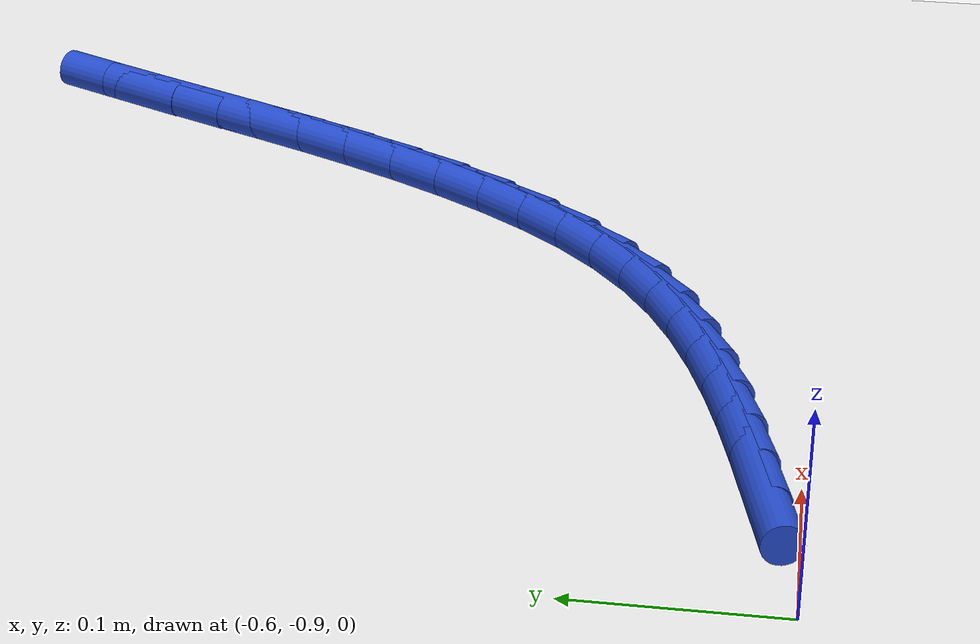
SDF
<sdf version="1.6">
 <world name="default">
  <model name="ground_plane">
   <static>1</static>
   <link name="link">
    <collision name="collision">
     <geometry><plane><normal>0 0 1</normal><size>100 100</size></plane></geometry>
     <surface><friction><ode><mu>100</mu><mu2>50</mu2></ode></friction></surface>
    </collision>
    <visual name="visual">
     <cast_shadows>0</cast_shadows>
     <geometry><plane><normal>0 0 1</normal><size>100 100</size></plane></geometry>
     <material>
      <script><uri>file://media/materials/scripts/gazebo.material</uri><name>Gazebo/WhiteGlow</name></script>
     </material>
    </visual>
   </link>
  </model>
  <model name="line">
   <link name="link_193">
    <pose>-0.522196267869529 -0.8838480058105354 0.01 0 1.57 0.22092395391204533</pose>
    <collision name="collision">
     <geometry><cylinder><radius>0.01</radius><length>0.08</length></cylinder></geometry>
    </collision>
    <visual name="visual">
     <material>
      <script><name>Gazebo/Blue</name><uri>file://media/materials/scripts/gazebo.material</uri></script>
     </material>
     <geometry><cylinder><radius>0.01</radius><length>0.08</length></cylinder></geometry>
    </visual>
   </link>
   <link name="link_194">
    <pose>-0.492215448138748 -0.8771146201297132 0.01 0 1.57 0.23871563226522327</pose>
    <collision name="collision">
     <geometry><cylinder><radius>0.01</radius><length>0.08</length></cylinder></geometry>
    </collision>
    <visual name="visual">
     <material>
      <script><name>Gazebo/Blue</name><uri>file://media/materials/scripts/gazebo.material</uri></script>
     </material>
     <geometry><cylinder><radius>0.01</radius><length>0.08</length></cylinder></geometry>
    </visual>
   </link>
   <link name="link_195">
    <pose>-0.4626974288581955 -0.8699312375763011 0.01 0 1.57 0.27046487389737023</pose>
    <collision name="collision">
     <geometry><cylinder><radius>0.01</radius><length>0.08</length></cylinder></geometry>
    </collision>
    <visual name="visual">
     <material>
      <script><name>Gazebo/Blue</name><uri>file://media/materials/scripts/gazebo.material</uri></script>
     </material>
     <geometry><cylinder><radius>0.01</radius><length>0.08</length></cylinder></geometry>
    </visual>
   </link>
   <link name="link_196">
    <pose>-0.4338766364359993 -0.8619404226766223 0.01 0 1.57 0.31720332330051815</pose>
    <collision name="collision">
     <geometry><cylinder><radius>0.01</radius><length>0.08</length></cylinder></geometry>
    </collision>
    <visual name="visual">
     <material>
      <script><name>Gazebo/Blue</name><uri>file://media/materials/scripts/gazebo.material</uri></script>
     </material>
     <geometry><cylinder><radius>0.01</radius><length>0.08</length></cylinder></geometry>
    </visual>
   </link>
   <link name="link_197">
    <pose>-0.40598749728028727 -0.8527847399570008 0.01 0 1.57 0.38014380091524663</pose>
    <collision name="collision">
     <geometry><cylinder><radius>0.01</radius><length>0.08</length></cylinder></geometry>
    </collision>
    <visual name="visual">
     <material>
      <script><name>Gazebo/Blue</name><uri>file://media/materials/scripts/gazebo.material</uri></script>
     </material>
     <geometry><cylinder><radius>0.01</radius><length>0.08</length></cylinder></geometry>
    </visual>
   </link>
   <link name="link_198">
    <pose>-0.3792644377991887 -0.8421067539437604 0.01 0 1.57 0.4603708080907195</pose>
    <collision name="collision">
     <geometry><cylinder><radius>0.01</radius><length>0.08</length></cylinder></geometry>
    </collision>
    <visual name="visual">
     <material>
      <script><name>Gazebo/Blue</name><uri>file://media/materials/scripts/gazebo.material</uri></script>
     </material>
     <geometry><cylinder><radius>0.01</radius><length>0.08</length></cylinder></geometry>
    </visual>
   </link>
   <link name="link_199">
    <pose>-0.35394188440083085 -0.8295490291632249 0.01 0 1.57 0.5582998097944468</pose>
    <collision name="collision">
     <geometry><cylinder><radius>0.01</radius><length>0.08</length></cylinder></geometry>
    </collision>
    <visual name="visual">
     <material>
      <script><name>Gazebo/Blue</name><uri>file://media/materials/scripts/gazebo.material</uri></script>
     </material>
     <geometry><cylinder><radius>0.01</radius><length>0.08</length></cylinder></geometry>
    </visual>
   </link>
   <link name="link_200">
    <pose>-0.330254263493342 -0.8147541301417187 0.01 0 1.57 0.6692791782389775</pose>
    <collision name="collision">
     <geometry><cylinder><radius>0.01</radius><length>0.08</length></cylinder></geometry>
    </collision>
    <visual name="visual">
     <material>
      <script><name>Gazebo/Blue</name><uri>file://media/materials/scripts/gazebo.material</uri></script>
     </material>
     <geometry><cylinder><radius>0.01</radius><length>0.08</length></cylinder></geometry>
    </visual>
   </link>
   <link name="link_201">
    <pose>-0.308380122131691 -0.7974498996878513 0.01 0 1.57 0.7731416124028677</pose>
    <collision name="collision">
     <geometry><cylinder><radius>0.01</radius><length>0.08</length></cylinder></geometry>
    </collision>
    <visual name="visual">
     <material>
      <script><name>Gazebo/Blue</name><uri>file://media/materials/scripts/gazebo.material</uri></script>
     </material>
     <geometry><cylinder><radius>0.01</radius><length>0.08</length></cylinder></geometry>
    </visual>
   </link>
   <link name="link_202">
    <pose>-0.28822417543132167 -0.7777820794604874 0.01 0 1.57 0.8630401048366977</pose>
    <collision name="collision">
     <geometry><cylinder><radius>0.01</radius><length>0.08</length></cylinder></geometry>
    </collision>
    <visual name="visual">
     <material>
      <script><name>Gazebo/Blue</name><uri>file://media/materials/scripts/gazebo.material</uri></script>
     </material>
     <geometry><cylinder><radius>0.01</radius><length>0.08</length></cylinder></geometry>
    </visual>
   </link>
   <link name="link_203">
    <pose>-0.2696073927884619 -0.7560242166616796 0.01 0 1.57 0.9389078071345398</pose>
    <collision name="collision">
     <geometry><cylinder><radius>0.01</radius><length>0.08</length></cylinder></geometry>
    </collision>
    <visual name="visual">
     <material>
      <script><name>Gazebo/Blue</name><uri>file://media/materials/scripts/gazebo.material</uri></script>
     </material>
     <geometry><cylinder><radius>0.01</radius><length>0.08</length></cylinder></geometry>
    </visual>
   </link>
   <link name="link_204">
    <pose>-0.2523507224076967 -0.7324498908343512 0.01 0 1.57 1.0014663035033076</pose>
    <collision name="collision">
     <geometry><cylinder><radius>0.01</radius><length>0.08</length></cylinder></geometry>
    </collision>
    <visual name="visual">
     <material>
      <script><name>Gazebo/Blue</name><uri>file://media/materials/scripts/gazebo.material</uri></script>
     </material>
     <geometry><cylinder><radius>0.01</radius><length>0.08</length></cylinder></geometry>
    </visual>
   </link>
   <link name="link_205">
    <pose>-0.23627511249361105 -0.7073326815214258 0.01 0 1.57 1.051776107743351</pose>
    <collision name="collision">
     <geometry><cylinder><radius>0.01</radius><length>0.08</length></cylinder></geometry>
    </collision>
    <visual name="visual">
     <material>
      <script><name>Gazebo/Blue</name><uri>file://media/materials/scripts/gazebo.material</uri></script>
     </material>
     <geometry><cylinder><radius>0.01</radius><length>0.08</length></cylinder></geometry>
    </visual>
   </link>
   <link name="link_206">
    <pose>-0.2212015112507896 -0.6809461682658257 0.01 0 1.57 1.0909355600334971</pose>
    <collision name="collision">
     <geometry><cylinder><radius>0.01</radius><length>0.08</length></cylinder></geometry>
    </collision>
    <visual name="visual">
     <material>
      <script><name>Gazebo/Blue</name><uri>file://media/materials/scripts/gazebo.material</uri></script>
     </material>
     <geometry><cylinder><radius>0.01</radius><length>0.08</length></cylinder></geometry>
    </visual>
   </link>
   <link name="link_207">
    <pose>-0.2069508668838182 -0.6535639306104759 0.01 0 1.57 1.1199088574607663</pose>
    <collision name="collision">
     <geometry><cylinder><radius>0.01</radius><length>0.08</length></cylinder></geometry>
    </collision>
    <visual name="visual">
     <material>
      <script><name>Gazebo/Blue</name><uri>file://media/materials/scripts/gazebo.material</uri></script>
     </material>
     <geometry><cylinder><radius>0.01</radius><length>0.08</length></cylinder></geometry>
    </visual>
   </link>
   <link name="link_208">
    <pose>-0.1933441275972814 -0.6254595480982988 0.01 0 1.57 1.139439944752225</pose>
    <collision name="collision">
     <geometry><cylinder><radius>0.01</radius><length>0.08</length></cylinder></geometry>
    </collision>
    <visual name="visual">
     <material>
      <script><name>Gazebo/Blue</name><uri>file://media/materials/scripts/gazebo.material</uri></script>
     </material>
     <geometry><cylinder><radius>0.01</radius><length>0.08</length></cylinder></geometry>
    </visual>
   </link>
   <link name="link_209">
    <pose>-0.1802022415957643 -0.596906600272218 0.01 0 1.57 1.150013653495811</pose>
    <collision name="collision">
     <geometry><cylinder><radius>0.01</radius><length>0.08</length></cylinder></geometry>
    </collision>
    <visual name="visual">
     <material>
      <script><name>Gazebo/Blue</name><uri>file://media/materials/scripts/gazebo.material</uri></script>
     </material>
     <geometry><cylinder><radius>0.01</radius><length>0.08</length></cylinder></geometry>
    </visual>
   </link>
   <link name="link_210">
    <pose>-0.16734615708385162 -0.568178666675156 0.01 0 1.57 1.151837684405631</pose>
    <collision name="collision">
     <geometry><cylinder><radius>0.01</radius><length>0.08</length></cylinder></geometry>
    </collision>
    <visual name="visual">
     <material>
      <script><name>Gazebo/Blue</name><uri>file://media/materials/scripts/gazebo.material</uri></script>
     </material>
     <geometry><cylinder><radius>0.01</radius><length>0.08</length></cylinder></geometry>
    </visual>
   </link>
   <link name="link_211">
    <pose>-0.15459682226612897 -0.5395493268500379 0.01 0 1.57 1.1448922890408628</pose>
    <collision name="collision">
     <geometry><cylinder><radius>0.01</radius><length>0.08</length></cylinder></geometry>
    </collision>
    <visual name="visual">
     <material>
      <script><name>Gazebo/Blue</name><uri>file://media/materials/scripts/gazebo.material</uri></script>
     </material>
     <geometry><cylinder><radius>0.01</radius><length>0.08</length></cylinder></geometry>
    </visual>
   </link>
   <link name="link_212">
    <pose>-0.14177653904631113 -0.5112904519775116 0.01 0 1.57 1.1339205359398676</pose>
    <collision name="collision">
     <geometry><cylinder><radius>0.01</radius><length>0.08</length></cylinder></geometry>
    </collision>
    <visual name="visual">
     <material>
      <script><name>Gazebo/Blue</name><uri>file://media/materials/scripts/gazebo.material</uri></script>
     </material>
     <geometry><cylinder><radius>0.01</radius><length>0.08</length></cylinder></geometry>
    </visual>
   </link>
  </model>
 </world>
</sdf>
